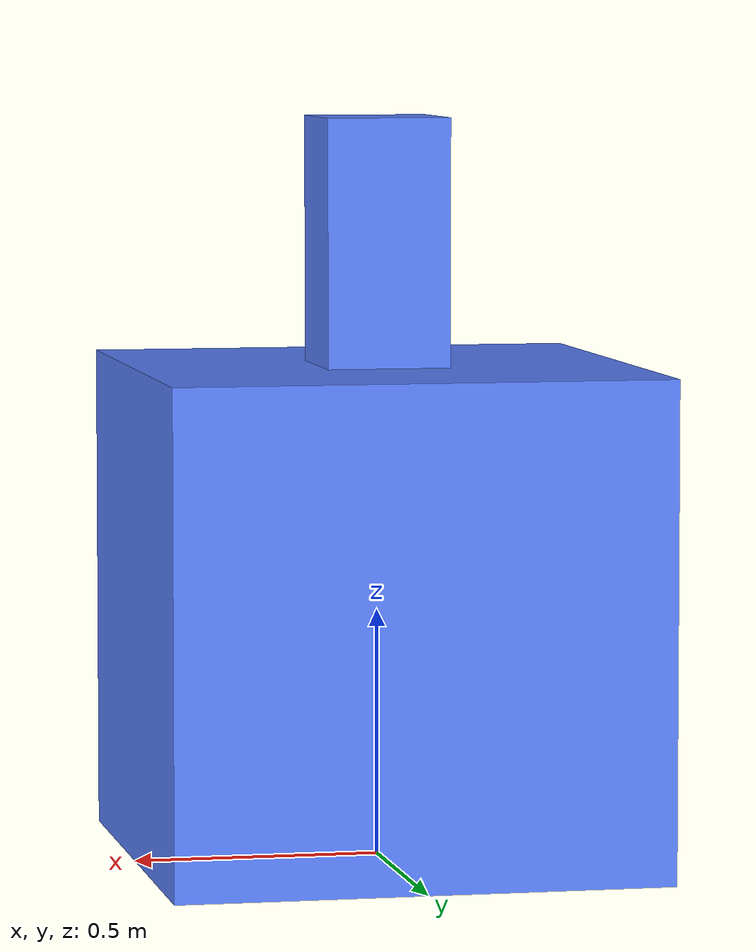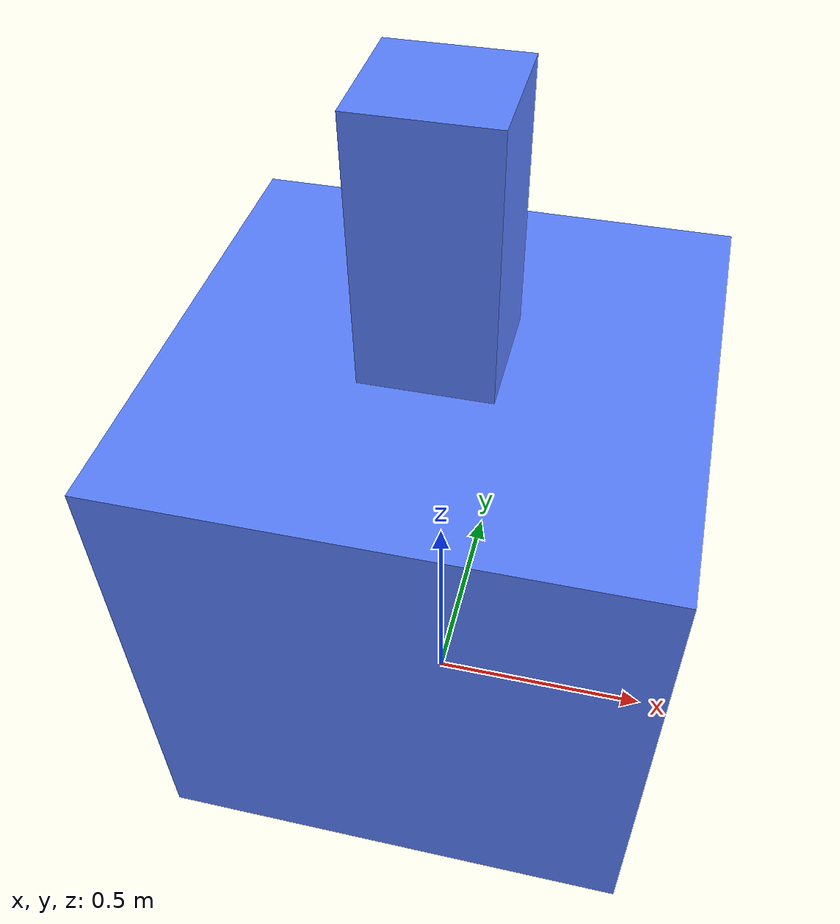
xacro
<?xml version="1.0" ?>
<robot name="elir_test" xmlns:xacro="http://www.ros.org/wiki/xacro">
<xacro:property name="M_PI" value="3.141592" />

  <material name="purple">
    <color rgba="${153/255} ${90/255} ${255/255} 1.0"/>
  </material>

  <material name="blue">
    <color rgba="${90/255} ${129/255} ${255/255} 1.0"/>
  </material>

  <material name="light_blue">
    <color rgba="${90/255} ${255/255} ${217/255} 1.0"/>
  </material>

    <link name="victory_link0">
    <!-- This visual represents the base body-->
    <visual>
      <geometry>
        <box size="1 1 1"/>
      </geometry>
      <material name="blue"/>
      <origin rpy="0 0 0" xyz="0.0 0.0 0.5"/>
    </visual>

    <collision>
      <geometry>
        <box size="1 1 1"/>
      </geometry>
      <origin rpy="0 0 0" xyz="0.0 0.0 0.5"/>
    </collision>
    </link>

    <joint name="joint_0" type="revolute">
      <parent link="victory_link0"/>
      <child link="box_link1"/>
      <origin rpy="0 0 0" xyz="0 0 0.5"/>
      <limit effort="1000.0" lower="-3.14" upper="3.14" velocity="0.5"/>
      <axis xyz="0 0 1"/>
    </joint>

    <link name="box_link1">
      <!-- This visual represents the base body-->
    <visual>
      <geometry>
       <box size="0.25 0.25 1"/>
      </geometry>
      <origin rpy="0 0 0" xyz="0.0 0.0 0.5"/>
      <material name="blue"/>
    </visual>
    <collision>
      <geometry>
       <box size="0.5 0.5 2"/>
      </geometry>
      <origin rpy="0 0 0" xyz="0.0 0.0 1"/>
    </collision>
    </link>
</robot>
